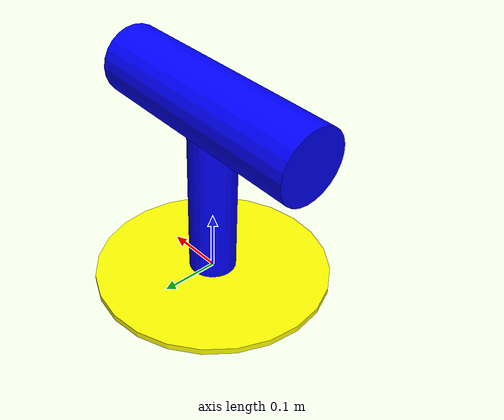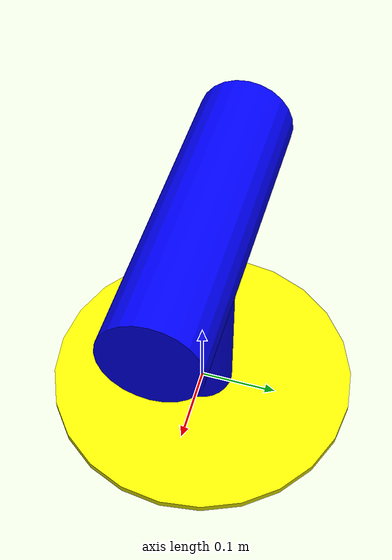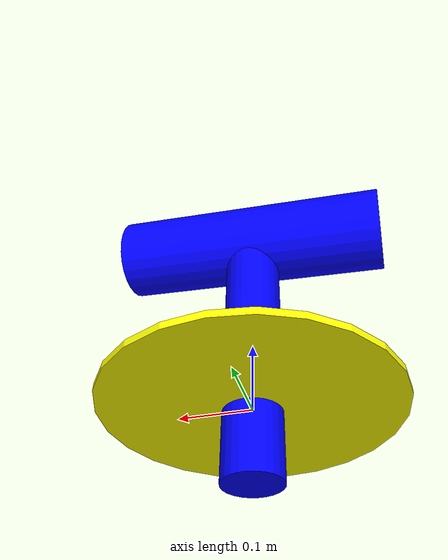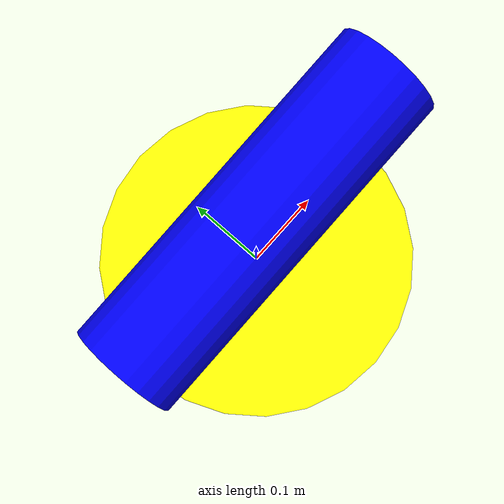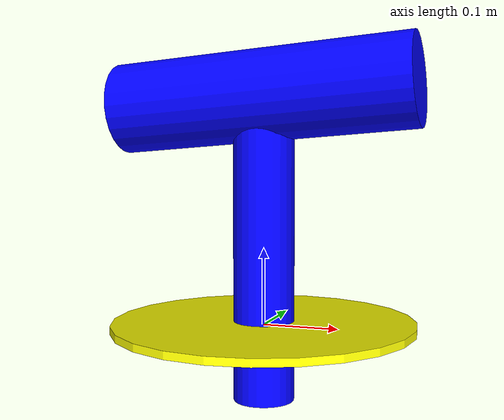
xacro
<?xml version="1.0"?>

<robot name="pan_tilt" xmlns:xacro="http://wiki.ros.org/xacro">
    <xacro:include filename="$(find rl_robot_description_pkg)/urdf/pan_tilt_macro.xacro" />

		<xacro:base_link_macro
			base_link_name="base_link">
		</xacro:base_link_macro>

		<xacro:pan_tilt_joint
			name="pan_joint"
			type="revolute"
			parent="base_link"
			child="pan_link">
			<origin xyz="0 0 0.1" />
			<axis xyz="0 0 1"/>
		</xacro:pan_tilt_joint>

		<xacro:pan_tilt_link name="pan_link">
			<geometry>
				<cylinder length="0.4" radius="0.04"/>
			</geometry>
			<origin xyz="0 0 0" rpy="0 0 0.09"/>
		</xacro:pan_tilt_link>

		<xacro:pan_tilt_joint
			name="tilt_joint"
			type="revolute"
			parent="pan_link"
			child="tilt_link">
			<origin xyz="0 0 0.2" />
			<axis xyz="0 1 0"/>
		</xacro:pan_tilt_joint>

		<xacro:pan_tilt_link name="tilt_link">
			<geometry>
				<cylinder length="0.4" radius="0.06"/>
			</geometry>
			<origin xyz="0 0 0" rpy="0 1.5 0.0"/>
		</xacro:pan_tilt_link>

</robot>

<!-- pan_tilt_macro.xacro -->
<robot name="pan_tilt_macro" xmlns:xacro="http://wiki.ros.org/xacro">

	<xacro:macro name="base_link_macro" params="base_link_name">
		<link name="${base_link_name}">
			<visual>
				<geometry>
					<cylinder length="0.01" radius="0.2"/>
				</geometry>
				<origin rpy="0 0 0" xyz="0 0 0"/>
					<material name="yellow">
						<color rgba="1 1 0 1"/>
					</material>
			</visual>
			<collision>
				<geometry>
					<cylinder length="0.03" radius="0.2"/>
				</geometry>
				<origin rpy="0 0 0" xyz="0 0 0"/>
			</collision>
			<inertial>
				<mass value="1"/>
					<inertia ixx="1.0" ixy="0.0" ixz="0.0" iyy="1.0" iyz="0.0" izz="1.0"/>
					</inertial>
		</link>
	</xacro:macro>

	<xacro:macro name="pan_tilt_joint" params="name type parent child *origin *axis">
		<joint name="${name}" type="${type}">
			<parent link="${parent}" />
			<child link="${child}" />
	    <xacro:insert_block name="origin" />
			<xacro:insert_block name="axis" />
	    <limit effort="300" velocity="0.1" lower="-3.14" upper="3.14"/>
	    <dynamics damping="50" friction="1"/>
		</joint>
	</xacro:macro>

	<xacro:macro name="pan_tilt_link" params="name *geometry *origin">
		<link name="${name}">
			<visual>
				<xacro:insert_block name="geometry" />
				<xacro:insert_block name="origin" />
		    <material name="red">
		      <color rgba="0 0 1 1"/>
		    </material>
		  </visual>
		  <collision>
				<xacro:insert_block name="geometry" />
				<xacro:insert_block name="origin" />
			</collision>
			<inertial>
				<mass value="1"/>
					<inertia ixx="1.0" ixy="0.0" ixz="0.0" iyy="1.0" iyz="0.0" izz="1.0"/>
		  </inertial>
	  </link>
	</xacro:macro>

</robot>
